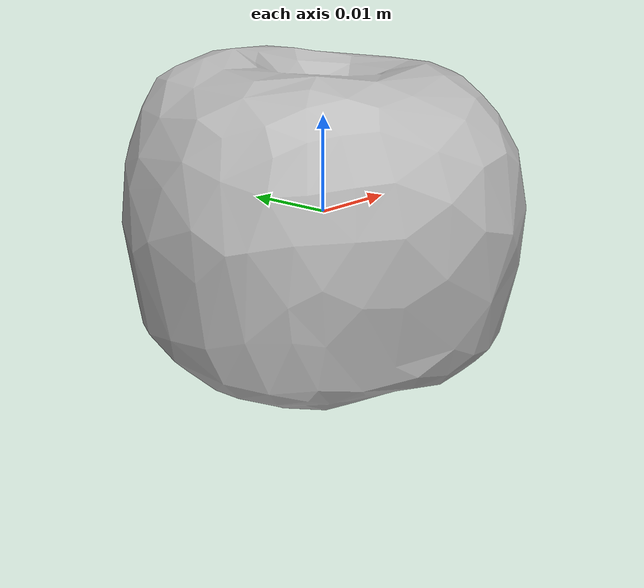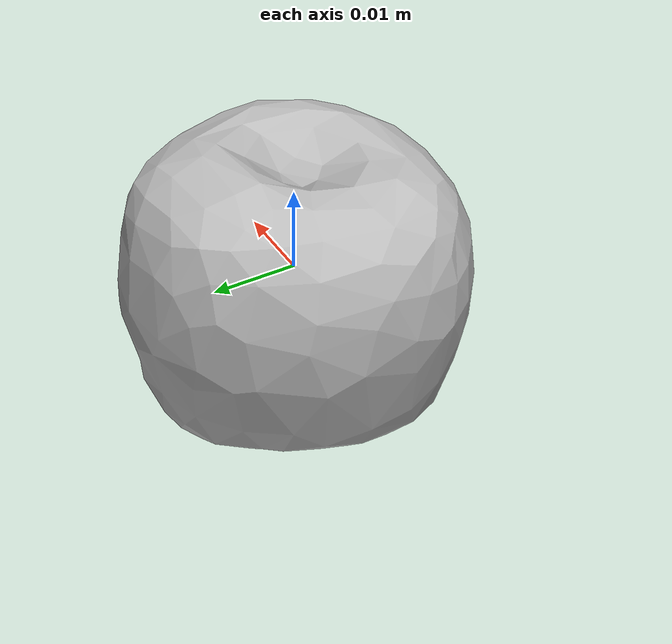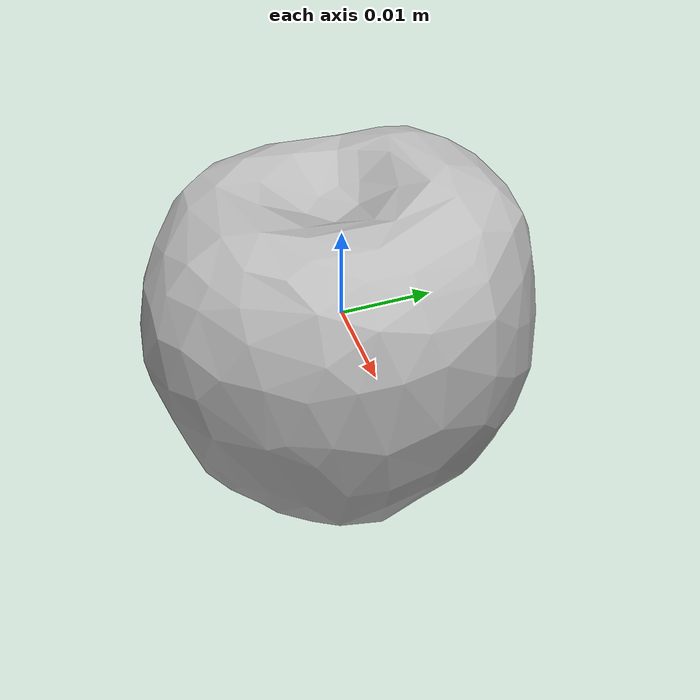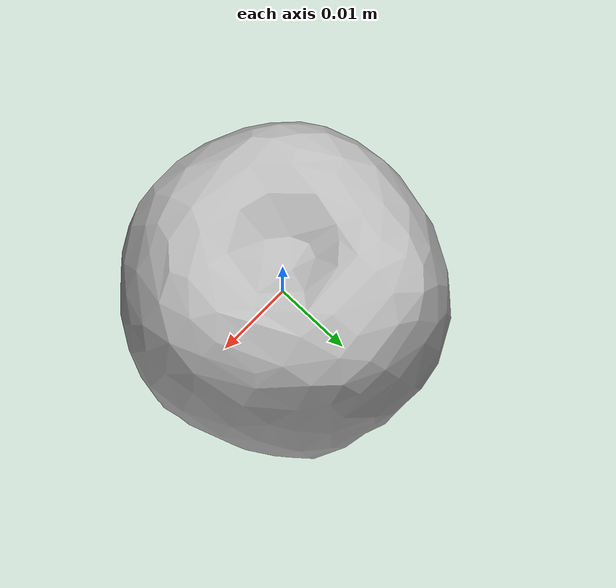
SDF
<?xml version="1.0" ?>
<sdf version="1.6">
  <model name="apple">
    <static>false</static>
    <link name="link">
      <!-- Visual element with scale applied -->
      <visual name="visual">
        <geometry>
          <mesh>
            <uri>model://apple/meshes/Apple.dae</uri>
            <scale>0.45 0.45 0.45</scale>
          </mesh>
        </geometry>
      </visual>
      <collision name="collision">
        <geometry>
          <box>
            <size>0.05 0.05 0.001</size>
          </box>
        </geometry>
      </collision>
    </link>
  </model>
</sdf>
